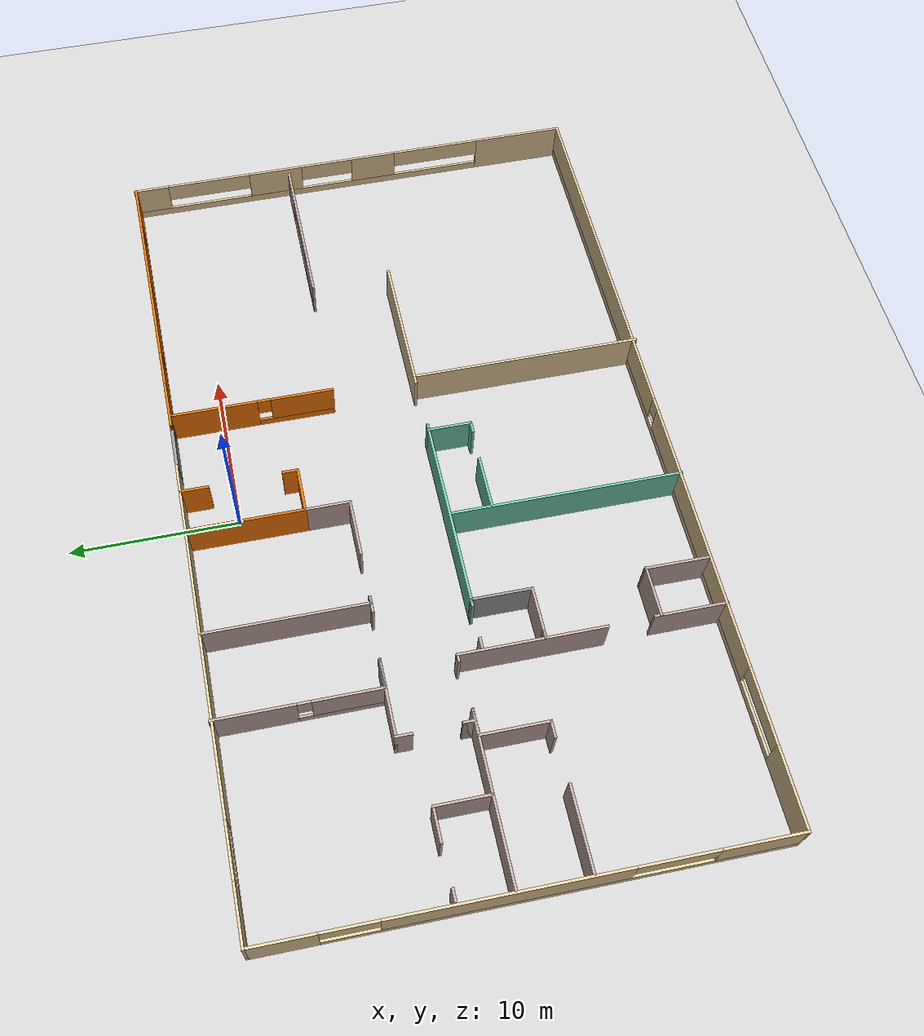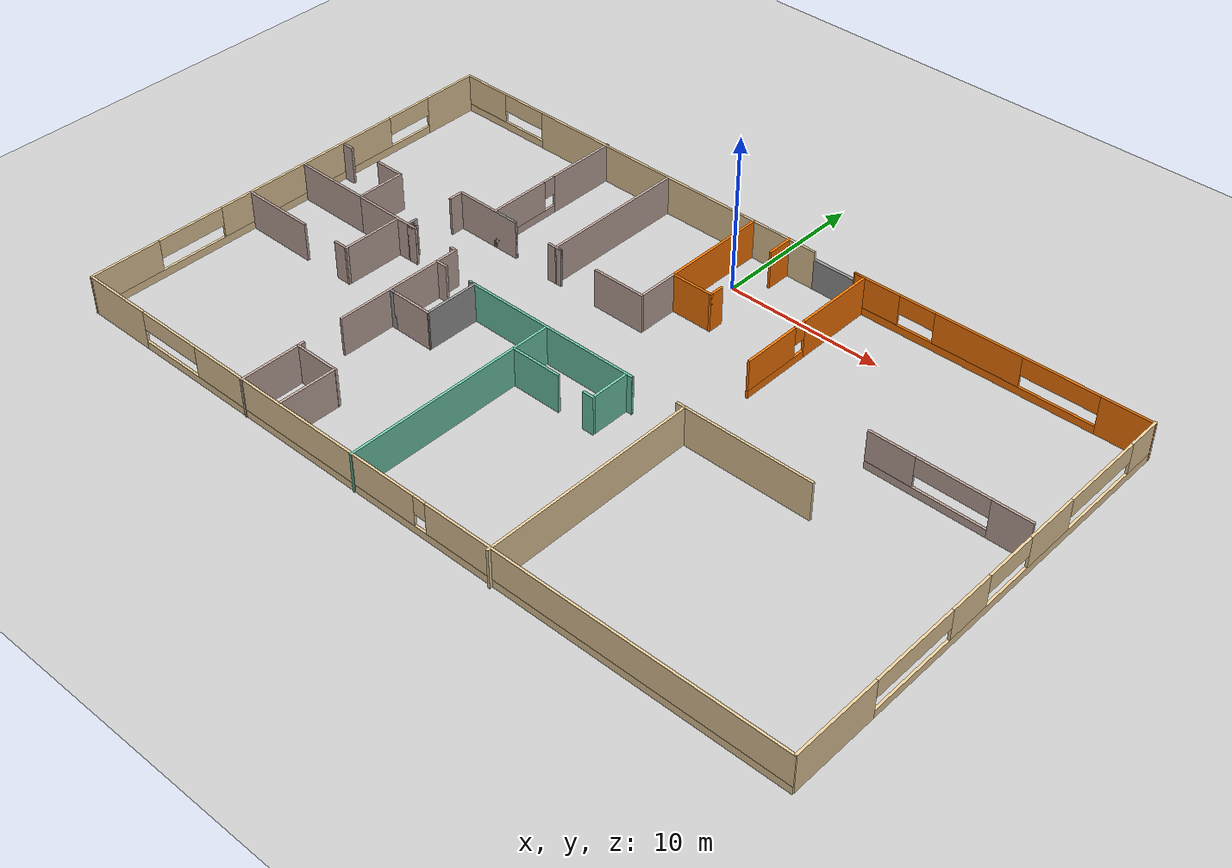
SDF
<sdf version="1.6">
 <world name="default">
  <model name="ground_plane">
   <static>1</static>
   <link name="link">
    <collision name="collision">
     <geometry><plane><normal>0 0 1</normal><size>100 100</size></plane></geometry>
     <surface><friction><ode><mu>100</mu><mu2>50</mu2></ode></friction></surface>
    </collision>
    <visual name="visual">
     <cast_shadows>0</cast_shadows>
     <geometry><plane><normal>0 0 1</normal><size>100 100</size></plane></geometry>
     <material>
      <script><uri>file://media/materials/scripts/gazebo.material</uri><name>Gazebo/Grey</name></script>
     </material>
    </visual>
   </link>
  </model>
  <model name="home">
   <pose>0.17633 -11.1583 0 0 -0 0</pose>
   <link name="Door_0">
    <collision name="Door_0_Collision">
     <geometry><box><size>2.70552 0.2 2</size></box></geometry>
     <pose>0 0 1 0 -0 0</pose>
    </collision>
    <visual name="Door_0_Visual">
     <pose>0 0 1 0 -0 0</pose>
     <geometry><box><size>2.70552 0.2 2</size></box></geometry>
     <material>
      <script><uri>file://media/materials/scripts/gazebo.material</uri><name>Gazebo/Grey</name></script>
     </material>
    </visual>
    <pose>4.41762 14.2282 0 0 -0 0</pose>
   </link>
   <link name="Wall_0">
    <pose>-10.694 14.2147 0 0 -0 3.14159</pose>
    <visual name="Wall_0_Visual_0">
     <pose>-3.22208 0 1.25 0 -0 0</pose>
     <geometry><box><size>21.0558 0.15 2.5</size></box></geometry>
     <material>
      <script><uri>file://media/materials/scripts/gazebo.material</uri><name>Gazebo/Grey</name></script>
      <ambient>0.921569 0.807843 0.615686 1</ambient>
     </material>
     <meta><layer>0</layer></meta>
    </visual>
    <collision name="Wall_0_Collision_0">
     <geometry><box><size>21.0558 0.15 2.5</size></box></geometry>
     <pose>-3.22208 0 1.25 0 -0 0</pose>
    </collision>
    <visual name="Wall_0_Visual_1">
     <pose>10.5279 0 0.25 0 -0 0</pose>
     <geometry><box><size>6.44415 0.15 0.5</size></box></geometry>
     <material>
      <script><uri>file://media/materials/scripts/gazebo.material</uri><name>Gazebo/Grey</name></script>
      <ambient>0.921569 0.807843 0.615686 1</ambient>
     </material>
     <meta><layer>0</layer></meta>
    </visual>
    <collision name="Wall_0_Collision_1">
     <geometry><box><size>6.44415 0.15 0.5</size></box></geometry>
     <pose>10.5279 0 0.25 0 -0 0</pose>
    </collision>
    <visual name="Wall_0_Visual_2">
     <pose>12.0924 0 1.5 0 -0 0</pose>
     <geometry><box><size>3.31523 0.15 2</size></box></geometry>
     <material>
      <script><uri>file://media/materials/scripts/gazebo.material</uri><name>Gazebo/Grey</name></script>
      <ambient>0.921569 0.807843 0.615686 1</ambient>
     </material>
     <meta><layer>0</layer></meta>
    </visual>
    <collision name="Wall_0_Collision_2">
     <geometry><box><size>3.31523 0.15 2</size></box></geometry>
     <pose>12.0924 0 1.5 0 -0 0</pose>
    </collision>
    <visual name="Wall_0_Visual_3">
     <pose>8.87031 0 1.9 0 -0 0</pose>
     <geometry><box><size>3.12892 0.15 1.2</size></box></geometry>
     <material>
      <script><uri>file://media/materials/scripts/gazebo.material</uri><name>Gazebo/Grey</name></script>
      <ambient>0.921569 0.807843 0.615686 1</ambient>
     </material>
     <meta><layer>0</layer></meta>
    </visual>
    <collision name="Wall_0_Collision_3">
     <geometry><box><size>3.12892 0.15 1.2</size></box></geometry>
     <pose>8.87031 0 1.9 0 -0 0</pose>
    </collision>
   </link>
   <link name="Wall_1">
    <pose>-24.369 -0.085334 0 0 -0 -1.5708</pose>
    <visual name="Wall_1_Visual_0">
     <pose>-12.5081 0 1.25 0 -0 0</pose>
     <geometry><box><size>3.7338 0.15 2.5</size></box></geometry>
     <material>
      <script><uri>file://media/materials/scripts/gazebo.material</uri><name>Gazebo/Grey</name></script>
      <ambient>0.921569 0.807843 0.615686 1</ambient>
     </material>
     <meta><layer>0</layer></meta>
    </visual>
    <collision name="Wall_1_Collision_0">
     <geometry><box><size>3.7338 0.15 2.5</size></box></geometry>
     <pose>-12.5081 0 1.25 0 -0 0</pose>
    </collision>
    <visual name="Wall_1_Visual_1">
     <pose>1.8669 0 0.25 0 -0 0</pose>
     <geometry><box><size>25.0162 0.15 0.5</size></box></geometry>
     <material>
      <script><uri>file://media/materials/scripts/gazebo.material</uri><name>Gazebo/Grey</name></script>
      <ambient>0.921569 0.807843 0.615686 1</ambient>
     </material>
     <meta><layer>0</layer></meta>
    </visual>
    <collision name="Wall_1_Collision_1">
     <geometry><box><size>25.0162 0.15 0.5</size></box></geometry>
     <pose>1.8669 0 0.25 0 -0 0</pose>
    </collision>
    <visual name="Wall_1_Visual_2">
     <pose>-1.07522 0 1.5 0 -0 0</pose>
     <geometry><box><size>12.9346 0.15 2</size></box></geometry>
     <material>
      <script><uri>file://media/materials/scripts/gazebo.material</uri><name>Gazebo/Grey</name></script>
      <ambient>0.921569 0.807843 0.615686 1</ambient>
     </material>
     <meta><layer>0</layer></meta>
    </visual>
    <collision name="Wall_1_Collision_2">
     <geometry><box><size>12.9346 0.15 2</size></box></geometry>
     <pose>-1.07522 0 1.5 0 -0 0</pose>
    </collision>
    <visual name="Wall_1_Visual_3">
     <pose>12.0788 0 1.5 0 -0 0</pose>
     <geometry><box><size>4.59231 0.15 2</size></box></geometry>
     <material>
      <script><uri>file://media/materials/scripts/gazebo.material</uri><name>Gazebo/Grey</name></script>
      <ambient>0.921569 0.807843 0.615686 1</ambient>
     </material>
     <meta><layer>0</layer></meta>
    </visual>
    <collision name="Wall_1_Collision_3">
     <geometry><box><size>4.59231 0.15 2</size></box></geometry>
     <pose>12.0788 0 1.5 0 -0 0</pose>
    </collision>
    <visual name="Wall_1_Visual_4">
     <pose>-9.09186 0 1.9 0 -0 0</pose>
     <geometry><box><size>3.09868 0.15 1.2</size></box></geometry>
     <material>
      <script><uri>file://media/materials/scripts/gazebo.material</uri><name>Gazebo/Grey</name></script>
      <ambient>0.921569 0.807843 0.615686 1</ambient>
     </material>
     <meta><layer>0</layer></meta>
    </visual>
    <collision name="Wall_1_Collision_4">
     <geometry><box><size>3.09868 0.15 1.2</size></box></geometry>
     <pose>-9.09186 0 1.9 0 -0 0</pose>
    </collision>
    <visual name="Wall_1_Visual_5">
     <pose>7.58739 0 1.9 0 -0 0</pose>
     <geometry><box><size>4.39061 0.15 1.2</size></box></geometry>
     <material>
      <script><uri>file://media/materials/scripts/gazebo.material</uri><name>Gazebo/Grey</name></script>
      <ambient>0.921569 0.807843 0.615686 1</ambient>
     </material>
     <meta><layer>0</layer></meta>
    </visual>
    <collision name="Wall_1_Collision_5">
     <geometry><box><size>4.39061 0.15 1.2</size></box></geometry>
     <pose>7.58739 0 1.9 0 -0 0</pose>
    </collision>
   </link>
   <link name="Wall_10">
    <collision name="Wall_10_Collision">
     <geometry><box><size>1 0.15 2.5</size></box></geometry>
     <pose>0 0 1.25 0 -0 0</pose>
    </collision>
    <visual name="Wall_10_Visual">
     <pose>0 0 1.25 0 -0 0</pose>
     <geometry><box><size>1 0.15 2.5</size></box></geometry>
     <material>
      <script><uri>file://media/materials/scripts/gazebo.material</uri><name>Gazebo/Grey</name></script>
      <ambient>0.996078 0.47451 0.0196078 1</ambient>
     </material>
     <meta><layer>0</layer></meta>
    </visual>
    <pose>1.32894 7.78967 0 0 -0 1.5708</pose>
   </link>
   <link name="Wall_12">
    <collision name="Wall_12_Collision">
     <geometry><box><size>1.75 0.15 2.5</size></box></geometry>
     <pose>0 0 1.25 0 -0 0</pose>
    </collision>
    <visual name="Wall_12_Visual">
     <pose>0 0 1.25 0 -0 0</pose>
     <geometry><box><size>1.75 0.15 2.5</size></box></geometry>
     <material>
      <script><uri>file://media/materials/scripts/gazebo.material</uri><name>Gazebo/Grey</name></script>
      <ambient>0.996078 0.47451 0.0196078 1</ambient>
     </material>
     <meta><layer>0</layer></meta>
    </visual>
    <pose>1.22772 13.4147 0 0 -0 -1.5708</pose>
   </link>
   <link name="Wall_14">
    <collision name="Wall_14_Collision">
     <geometry><box><size>2.75 0.15 2.5</size></box></geometry>
     <pose>0 0 1.25 0 -0 0</pose>
    </collision>
    <visual name="Wall_14_Visual">
     <pose>0 0 1.25 0 -0 0</pose>
     <geometry><box><size>2.75 0.15 2.5</size></box></geometry>
     <material>
      <script><uri>file://media/materials/scripts/gazebo.material</uri><name>Gazebo/Grey</name></script>
      <ambient>0.760784 0.662745 0.627451 1</ambient>
     </material>
     <meta><layer>0</layer></meta>
    </visual>
    <pose>-1.33164 6.06467 0 0 -0 -1.5708</pose>
   </link>
   <link name="Wall_15">
    <collision name="Wall_15_Collision">
     <geometry><box><size>3.5 0.15 2.5</size></box></geometry>
     <pose>0 0 1.25 0 -0 0</pose>
    </collision>
    <visual name="Wall_15_Visual">
     <pose>0 0 1.25 0 -0 0</pose>
     <geometry><box><size>3.5 0.15 2.5</size></box></geometry>
     <material>
      <script><uri>file://media/materials/scripts/gazebo.material</uri><name>Gazebo/Grey</name></script>
      <ambient>0.760784 0.662745 0.627451 1</ambient>
     </material>
     <meta><layer>0</layer></meta>
    </visual>
    <pose>-3.00664 4.76467 0 0 -0 3.14159</pose>
   </link>
   <link name="Wall_17">
    <collision name="Wall_17_Collision">
     <geometry><box><size>9.59059 0.15 2.5</size></box></geometry>
     <pose>0 0 1.25 0 -0 0</pose>
    </collision>
    <visual name="Wall_17_Visual">
     <pose>0 0 1.25 0 -0 0</pose>
     <geometry><box><size>9.59059 0.15 2.5</size></box></geometry>
     <material>
      <script><uri>file://media/materials/scripts/gazebo.material</uri><name>Gazebo/Grey</name></script>
      <ambient>0.760784 0.662745 0.627451 1</ambient>
     </material>
     <meta><layer>0</layer></meta>
    </visual>
    <pose>-7.76588 9.49437 0 0 -0 -1.57206</pose>
   </link>
   <link name="Wall_18">
    <collision name="Wall_18_Collision">
     <geometry><box><size>0.5 0.15 2.5</size></box></geometry>
     <pose>0 0 1.25 0 -0 0</pose>
    </collision>
    <visual name="Wall_18_Visual">
     <pose>0 0 1.25 0 -0 0</pose>
     <geometry><box><size>0.5 0.15 2.5</size></box></geometry>
     <material>
      <script><uri>file://media/materials/scripts/gazebo.material</uri><name>Gazebo/Grey</name></script>
      <ambient>1 1 1 1</ambient>
     </material>
     <meta><layer>0</layer></meta>
    </visual>
    <pose>-7.59685 4.77408 0 0 -0 0</pose>
   </link>
   <link name="Wall_19">
    <collision name="Wall_19_Collision">
     <geometry><box><size>1 0.15 2.5</size></box></geometry>
     <pose>0 0 1.25 0 -0 0</pose>
    </collision>
    <visual name="Wall_19_Visual">
     <pose>0 0 1.25 0 -0 0</pose>
     <geometry><box><size>1 0.15 2.5</size></box></geometry>
     <material>
      <script><uri>file://media/materials/scripts/gazebo.material</uri><name>Gazebo/Grey</name></script>
      <ambient>0.760784 0.662745 0.627451 1</ambient>
     </material>
     <meta><layer>0</layer></meta>
    </visual>
    <pose>-7.84685 4.77408 0 0 -0 3.14159</pose>
   </link>
   <link name="Wall_2">
    <pose>1e-06 -14.2933 0 0 -0 0.003775</pose>
    <visual name="Wall_2_Visual_0">
     <pose>-22.1181 0 1.25 0 -0 0</pose>
     <geometry><box><size>4.65263 0.15 2.5</size></box></geometry>
     <material>
      <script><uri>file://media/materials/scripts/gazebo.material</uri><name>Gazebo/Grey</name></script>
      <ambient>0.921569 0.807843 0.615686 1</ambient>
     </material>
     <meta><layer>0</layer></meta>
    </visual>
    <collision name="Wall_2_Collision_0">
     <geometry><box><size>4.65263 0.15 2.5</size></box></geometry>
     <pose>-22.1181 0 1.25 0 -0 0</pose>
    </collision>
    <visual name="Wall_2_Visual_1">
     <pose>2.32631 0 0.25 0 -0 0</pose>
     <geometry><box><size>44.2362 0.15 0.5</size></box></geometry>
     <material>
      <script><uri>file://media/materials/scripts/gazebo.material</uri><name>Gazebo/Grey</name></script>
      <ambient>0.921569 0.807843 0.615686 1</ambient>
     </material>
     <meta><layer>0</layer></meta>
    </visual>
    <collision name="Wall_2_Collision_1">
     <geometry><box><size>44.2362 0.15 0.5</size></box></geometry>
     <pose>2.32631 0 0.25 0 -0 0</pose>
    </collision>
    <visual name="Wall_2_Visual_2">
     <pose>-7.11966 0 1.5 0 -0 0</pose>
     <geometry><box><size>16.6115 0.15 2</size></box></geometry>
     <material>
      <script><uri>file://media/materials/scripts/gazebo.material</uri><name>Gazebo/Grey</name></script>
      <ambient>0.921569 0.807843 0.615686 1</ambient>
     </material>
     <meta><layer>0</layer></meta>
    </visual>
    <collision name="Wall_2_Collision_2">
     <geometry><box><size>16.6115 0.15 2</size></box></geometry>
     <pose>-7.11966 0 1.5 0 -0 0</pose>
    </collision>
    <visual name="Wall_2_Visual_3">
     <pose>13.2152 0 1.5 0 -0 0</pose>
     <geometry><box><size>22.4583 0.15 2</size></box></geometry>
     <material>
      <script><uri>file://media/materials/scripts/gazebo.material</uri><name>Gazebo/Grey</name></script>
      <ambient>0.921569 0.807843 0.615686 1</ambient>
     </material>
     <meta><layer>0</layer></meta>
    </visual>
    <collision name="Wall_2_Collision_3">
     <geometry><box><size>22.4583 0.15 2</size></box></geometry>
     <pose>13.2152 0 1.5 0 -0 0</pose>
    </collision>
    <visual name="Wall_2_Visual_4">
     <pose>-17.6086 0 1.9 0 -0 0</pose>
     <geometry><box><size>4.36633 0.15 1.2</size></box></geometry>
     <material>
      <script><uri>file://media/materials/scripts/gazebo.material</uri><name>Gazebo/Grey</name></script>
      <ambient>0.921569 0.807843 0.615686 1</ambient>
     </material>
     <meta><layer>0</layer></meta>
    </visual>
    <collision name="Wall_2_Collision_4">
     <geometry><box><size>4.36633 0.15 1.2</size></box></geometry>
     <pose>-17.6086 0 1.9 0 -0 0</pose>
    </collision>
    <visual name="Wall_2_Visual_5">
     <pose>1.58611 0 1.9 0 -0 0</pose>
     <geometry><box><size>0.8 0.15 1.2</size></box></geometry>
     <material>
      <script><uri>file://media/materials/scripts/gazebo.material</uri><name>Gazebo/Grey</name></script>
      <ambient>0.921569 0.807843 0.615686 1</ambient>
     </material>
     <meta><layer>0</layer></meta>
    </visual>
    <collision name="Wall_2_Collision_5">
     <geometry><box><size>0.8 0.15 1.2</size></box></geometry>
     <pose>1.58611 0 1.9 0 -0 0</pose>
    </collision>
   </link>
   <link name="Wall_21">
    <pose>-12.7235 9.62104 0 0 -0 -1.5708</pose>
    <visual name="Wall_21_Visual_0">
     <pose>-2.41962 0 1.25 0 -0 0</pose>
     <geometry><box><size>4.66076 0.15 2.5</size></box></geometry>
     <material>
      <script><uri>file://media/materials/scripts/gazebo.material</uri><name>Gazebo/Grey</name></script>
      <ambient>0.760784 0.662745 0.627451 1</ambient>
     </material>
     <meta><layer>0</layer></meta>
    </visual>
    <collision name="Wall_21_Collision_0">
     <geometry><box><size>4.66076 0.15 2.5</size></box></geometry>
     <pose>-2.41962 0 1.25 0 -0 0</pose>
    </collision>
    <visual name="Wall_21_Visual_1">
     <pose>2.33038 0 0.25 0 -0 0</pose>
     <geometry><box><size>4.83924 0.15 0.5</size></box></geometry>
     <material>
      <script><uri>file://media/materials/scripts/gazebo.material</uri><name>Gazebo/Grey</name></script>
      <ambient>0.760784 0.662745 0.627451 1</ambient>
     </material>
     <meta><layer>0</layer></meta>
    </visual>
    <collision name="Wall_21_Collision_1">
     <geometry><box><size>4.83924 0.15 0.5</size></box></geometry>
     <pose>2.33038 0 0.25 0 -0 0</pose>
    </collision>
    <visual name="Wall_21_Visual_2">
     <pose>2.73038 0 1.5 0 -0 0</pose>
     <geometry><box><size>4.03923 0.15 2</size></box></geometry>
     <material>
      <script><uri>file://media/materials/scripts/gazebo.material</uri><name>Gazebo/Grey</name></script>
      <ambient>0.760784 0.662745 0.627451 1</ambient>
     </material>
     <meta><layer>0</layer></meta>
    </visual>
    <collision name="Wall_21_Collision_2">
     <geometry><box><size>4.03923 0.15 2</size></box></geometry>
     <pose>2.73038 0 1.5 0 -0 0</pose>
    </collision>
    <visual name="Wall_21_Visual_3">
     <pose>0.310765 0 1.9 0 -0 0</pose>
     <geometry><box><size>0.8 0.15 1.2</size></box></geometry>
     <material>
      <script><uri>file://media/materials/scripts/gazebo.material</uri><name>Gazebo/Grey</name></script>
      <ambient>0.760784 0.662745 0.627451 1</ambient>
     </material>
     <meta><layer>0</layer></meta>
    </visual>
    <collision name="Wall_21_Collision_3">
     <geometry><box><size>0.8 0.15 1.2</size></box></geometry>
     <pose>0.310765 0 1.9 0 -0 0</pose>
    </collision>
   </link>
   <link name="Wall_22">
    <collision name="Wall_22_Collision">
     <geometry><box><size>1.75 0.15 2.5</size></box></geometry>
     <pose>0 0 1.25 0 -0 0</pose>
    </collision>
    <visual name="Wall_22_Visual">
     <pose>0 0 1.25 0 -0 0</pose>
     <geometry><box><size>1.75 0.15 2.5</size></box></geometry>
     <material>
      <script><uri>file://media/materials/scripts/gazebo.material</uri><name>Gazebo/Grey</name></script>
      <ambient>1 1 1 1</ambient>
     </material>
     <meta><layer>0</layer></meta>
    </visual>
    <pose>-11.9235 4.94604 0 0 -0 0</pose>
   </link>
   <link name="Wall_23">
    <collision name="Wall_23_Collision">
     <geometry><box><size>4.5 0.15 2.5</size></box></geometry>
     <pose>0 0 1.25 0 -0 0</pose>
    </collision>
    <visual name="Wall_23_Visual">
     <pose>0 0 1.25 0 -0 0</pose>
     <geometry><box><size>4.5 0.15 2.5</size></box></geometry>
     <material>
      <script><uri>file://media/materials/scripts/gazebo.material</uri><name>Gazebo/Grey</name></script>
      <ambient>0.760784 0.662745 0.627451 1</ambient>
     </material>
     <meta><layer>0</layer></meta>
    </visual>
    <pose>-13.2985 4.94604 0 0 -0 3.14159</pose>
   </link>
   <link name="Wall_24">
    <collision name="Wall_24_Collision">
     <geometry><box><size>1 0.15 2.5</size></box></geometry>
     <pose>0 0 1.25 0 -0 0</pose>
    </collision>
    <visual name="Wall_24_Visual">
     <pose>0 0 1.25 0 -0 0</pose>
     <geometry><box><size>1 0.15 2.5</size></box></geometry>
     <material>
      <script><uri>file://media/materials/scripts/gazebo.material</uri><name>Gazebo/Grey</name></script>
      <ambient>0.760784 0.662745 0.627451 1</ambient>
     </material>
     <meta><layer>0</layer></meta>
    </visual>
    <pose>-15.4735 4.52104 0 0 -0 -1.5708</pose>
   </link>
   <link name="Wall_26">
    <collision name="Wall_26_Collision">
     <geometry><box><size>0.75 0.15 2.5</size></box></geometry>
     <pose>0 0 1.25 0 -0 0</pose>
    </collision>
    <visual name="Wall_26_Visual">
     <pose>0 0 1.25 0 -0 0</pose>
     <geometry><box><size>0.75 0.15 2.5</size></box></geometry>
     <material>
      <script><uri>file://media/materials/scripts/gazebo.material</uri><name>Gazebo/Grey</name></script>
      <ambient>0.760784 0.662745 0.627451 1</ambient>
     </material>
     <meta><layer>0</layer></meta>
    </visual>
    <pose>-23.8968 3.71786 0 0 -0 0</pose>
   </link>
   <link name="Wall_28">
    <collision name="Wall_28_Collision">
     <geometry><box><size>2 0.15 2.5</size></box></geometry>
     <pose>0 0 1.25 0 -0 0</pose>
    </collision>
    <visual name="Wall_28_Visual">
     <pose>0 0 1.25 0 -0 0</pose>
     <geometry><box><size>2 0.15 2.5</size></box></geometry>
     <material>
      <script><uri>file://media/materials/scripts/gazebo.material</uri><name>Gazebo/Grey</name></script>
      <ambient>0.760784 0.662745 0.627451 1</ambient>
     </material>
     <meta><layer>0</layer></meta>
    </visual>
    <pose>-20.3424 3.79923 0 0 -0 0</pose>
   </link>
   <link name="Wall_29">
    <collision name="Wall_29_Collision">
     <geometry><box><size>3.25 0.15 2.5</size></box></geometry>
     <pose>0 0 1.25 0 -0 0</pose>
    </collision>
    <visual name="Wall_29_Visual">
     <pose>0 0 1.25 0 -0 0</pose>
     <geometry><box><size>3.25 0.15 2.5</size></box></geometry>
     <material>
      <script><uri>file://media/materials/scripts/gazebo.material</uri><name>Gazebo/Grey</name></script>
      <ambient>0.760784 0.662745 0.627451 1</ambient>
     </material>
     <meta><layer>0</layer></meta>
    </visual>
    <pose>-19.4174 2.24923 0 0 -0 -1.5708</pose>
   </link>
   <link name="Wall_3">
    <pose>24.346 0.144666 0 0 -0 1.57241</pose>
    <visual name="Wall_3_Visual_0">
     <pose>-11.5446 0 1.25 0 -0 0</pose>
     <geometry><box><size>5.66079 0.15 2.5</size></box></geometry>
     <material>
      <script><uri>file://media/materials/scripts/gazebo.material</uri><name>Gazebo/Grey</name></script>
      <ambient>0.921569 0.807843 0.615686 1</ambient>
     </material>
     <meta><layer>0</layer></meta>
    </visual>
    <collision name="Wall_3_Collision_0">
     <geometry><box><size>5.66079 0.15 2.5</size></box></geometry>
     <pose>-11.5446 0 1.25 0 -0 0</pose>
    </collision>
    <visual name="Wall_3_Visual_1">
     <pose>2.83039 0 0.25 0 -0 0</pose>
     <geometry><box><size>23.0893 0.15 0.5</size></box></geometry>
     <material>
      <script><uri>file://media/materials/scripts/gazebo.material</uri><name>Gazebo/Grey</name></script>
      <ambient>0.921569 0.807843 0.615686 1</ambient>
     </material>
     <meta><layer>0</layer></meta>
    </visual>
    <collision name="Wall_3_Collision_1">
     <geometry><box><size>23.0893 0.15 0.5</size></box></geometry>
     <pose>2.83039 0 0.25 0 -0 0</pose>
    </collision>
    <visual name="Wall_3_Visual_2">
     <pose>-1.59439 0 1.5 0 -0 0</pose>
     <geometry><box><size>2.9093 0.15 2</size></box></geometry>
     <material>
      <script><uri>file://media/materials/scripts/gazebo.material</uri><name>Gazebo/Grey</name></script>
      <ambient>0.921569 0.807843 0.615686 1</ambient>
     </material>
     <meta><layer>0</layer></meta>
    </visual>
    <collision name="Wall_3_Collision_2">
     <geometry><box><size>2.9093 0.15 2</size></box></geometry>
     <pose>-1.59439 0 1.5 0 -0 0</pose>
    </collision>
    <visual name="Wall_3_Visual_3">
     <pose>4.99086 0 1.5 0 -0 0</pose>
     <geometry><box><size>3.50863 0.15 2</size></box></geometry>
     <material>
      <script><uri>file://media/materials/scripts/gazebo.material</uri><name>Gazebo/Grey</name></script>
      <ambient>0.921569 0.807843 0.615686 1</ambient>
     </material>
     <meta><layer>0</layer></meta>
    </visual>
    <collision name="Wall_3_Collision_3">
     <geometry><box><size>3.50863 0.15 2</size></box></geometry>
     <pose>4.99086 0 1.5 0 -0 0</pose>
    </collision>
    <visual name="Wall_3_Visual_4">
     <pose>13.2554 0 1.5 0 -0 0</pose>
     <geometry><box><size>2.23916 0.15 2</size></box></geometry>
     <material>
      <script><uri>file://media/materials/scripts/gazebo.material</uri><name>Gazebo/Grey</name></script>
      <ambient>0.921569 0.807843 0.615686 1</ambient>
     </material>
     <meta><layer>0</layer></meta>
    </visual>
    <collision name="Wall_3_Collision_4">
     <geometry><box><size>2.23916 0.15 2</size></box></geometry>
     <pose>13.2554 0 1.5 0 -0 0</pose>
    </collision>
    <visual name="Wall_3_Visual_5">
     <pose>-5.88164 0 1.9 0 -0 0</pose>
     <geometry><box><size>5.66519 0.15 1.2</size></box></geometry>
     <material>
      <script><uri>file://media/materials/scripts/gazebo.material</uri><name>Gazebo/Grey</name></script>
      <ambient>0.921569 0.807843 0.615686 1</ambient>
     </material>
     <meta><layer>0</layer></meta>
    </visual>
    <collision name="Wall_3_Collision_5">
     <geometry><box><size>5.66519 0.15 1.2</size></box></geometry>
     <pose>-5.88164 0 1.9 0 -0 0</pose>
    </collision>
    <visual name="Wall_3_Visual_6">
     <pose>1.5484 0 1.9 0 -0 0</pose>
     <geometry><box><size>3.37629 0.15 1.2</size></box></geometry>
     <material>
      <script><uri>file://media/materials/scripts/gazebo.material</uri><name>Gazebo/Grey</name></script>
      <ambient>0.921569 0.807843 0.615686 1</ambient>
     </material>
     <meta><layer>0</layer></meta>
    </visual>
    <collision name="Wall_3_Collision_6">
     <geometry><box><size>3.37629 0.15 1.2</size></box></geometry>
     <pose>1.5484 0 1.9 0 -0 0</pose>
    </collision>
    <visual name="Wall_3_Visual_7">
     <pose>9.44052 0 1.9 0 -0 0</pose>
     <geometry><box><size>5.39068 0.15 1.2</size></box></geometry>
     <material>
      <script><uri>file://media/materials/scripts/gazebo.material</uri><name>Gazebo/Grey</name></script>
      <ambient>0.921569 0.807843 0.615686 1</ambient>
     </material>
     <meta><layer>0</layer></meta>
    </visual>
    <collision name="Wall_3_Collision_7">
     <geometry><box><size>5.39068 0.15 1.2</size></box></geometry>
     <pose>9.44052 0 1.9 0 -0 0</pose>
    </collision>
   </link>
   <link name="Wall_30">
    <collision name="Wall_30_Collision">
     <geometry><box><size>4.75 0.15 2.5</size></box></geometry>
     <pose>0 0 1.25 0 -0 0</pose>
    </collision>
    <visual name="Wall_30_Visual">
     <pose>0 0 1.25 0 -0 0</pose>
     <geometry><box><size>4.75 0.15 2.5</size></box></geometry>
     <material>
      <script><uri>file://media/materials/scripts/gazebo.material</uri><name>Gazebo/Grey</name></script>
      <ambient>0.760784 0.662745 0.627451 1</ambient>
     </material>
     <meta><layer>0</layer></meta>
    </visual>
    <pose>-17.1174 0.699227 0 0 -0 0</pose>
   </link>
   <link name="Wall_31">
    <collision name="Wall_31_Collision">
     <geometry><box><size>0.75 0.15 2.5</size></box></geometry>
     <pose>0 0 1.25 0 -0 0</pose>
    </collision>
    <visual name="Wall_31_Visual">
     <pose>0 0 1.25 0 -0 0</pose>
     <geometry><box><size>0.75 0.15 2.5</size></box></geometry>
     <material>
      <script><uri>file://media/materials/scripts/gazebo.material</uri><name>Gazebo/Grey</name></script>
      <ambient>1 1 1 1</ambient>
     </material>
     <meta><layer>0</layer></meta>
    </visual>
    <pose>-15.1174 0.699227 0 0 -0 3.14159</pose>
   </link>
   <link name="Wall_32">
    <collision name="Wall_32_Collision">
     <geometry><box><size>0.75 0.15 2.5</size></box></geometry>
     <pose>0 0 1.25 0 -0 0</pose>
    </collision>
    <visual name="Wall_32_Visual">
     <pose>0 0 1.25 0 -0 0</pose>
     <geometry><box><size>0.75 0.15 2.5</size></box></geometry>
     <material>
      <script><uri>file://media/materials/scripts/gazebo.material</uri><name>Gazebo/Grey</name></script>
      <ambient>1 1 1 1</ambient>
     </material>
     <meta><layer>0</layer></meta>
    </visual>
    <pose>-15.4174 0.999227 0 0 -0 1.5708</pose>
   </link>
   <link name="Wall_33">
    <collision name="Wall_33_Collision">
     <geometry><box><size>0.75 0.15 2.5</size></box></geometry>
     <pose>0 0 1.25 0 -0 0</pose>
    </collision>
    <visual name="Wall_33_Visual">
     <pose>0 0 1.25 0 -0 0</pose>
     <geometry><box><size>0.75 0.15 2.5</size></box></geometry>
     <material>
      <script><uri>file://media/materials/scripts/gazebo.material</uri><name>Gazebo/Grey</name></script>
      <ambient>0.760784 0.662745 0.627451 1</ambient>
     </material>
     <meta><layer>0</layer></meta>
    </visual>
    <pose>-15.4174 0.999227 0 0 -0 -1.5708</pose>
   </link>
   <link name="Wall_34">
    <collision name="Wall_34_Collision">
     <geometry><box><size>0.971585 0.15 2.5</size></box></geometry>
     <pose>0 0 1.25 0 -0 0</pose>
    </collision>
    <visual name="Wall_34_Visual">
     <pose>0 0 1.25 0 -0 0</pose>
     <geometry><box><size>0.971585 0.15 2.5</size></box></geometry>
     <material>
      <script><uri>file://media/materials/scripts/gazebo.material</uri><name>Gazebo/Grey</name></script>
      <ambient>0.760784 0.662745 0.627451 1</ambient>
     </material>
     <meta><layer>0</layer></meta>
    </visual>
    <pose>-15.828 0.684225 0 0 -0 -3.10507</pose>
   </link>
   <link name="Wall_35">
    <collision name="Wall_35_Collision">
     <geometry><box><size>4 0.15 2.5</size></box></geometry>
     <pose>0 0 1.25 0 -0 0</pose>
    </collision>
    <visual name="Wall_35_Visual">
     <pose>0 0 1.25 0 -0 0</pose>
     <geometry><box><size>4 0.15 2.5</size></box></geometry>
     <material>
      <script><uri>file://media/materials/scripts/gazebo.material</uri><name>Gazebo/Grey</name></script>
      <ambient>0.760784 0.662745 0.627451 1</ambient>
     </material>
     <meta><layer>0</layer></meta>
    </visual>
    <pose>-16.2385 -1.25578 0 0 -0 -1.5708</pose>
   </link>
   <link name="Wall_36">
    <collision name="Wall_36_Collision">
     <geometry><box><size>1 0.15 2.5</size></box></geometry>
     <pose>0 0 1.25 0 -0 0</pose>
    </collision>
    <visual name="Wall_36_Visual">
     <pose>0 0 1.25 0 -0 0</pose>
     <geometry><box><size>1 0.15 2.5</size></box></geometry>
     <material>
      <script><uri>file://media/materials/scripts/gazebo.material</uri><name>Gazebo/Grey</name></script>
      <ambient>0.760784 0.662745 0.627451 1</ambient>
     </material>
     <meta><layer>0</layer></meta>
    </visual>
    <pose>-16.6635 -3.18078 0 0 -0 3.14159</pose>
   </link>
   <link name="Wall_38">
    <collision name="Wall_38_Collision">
     <geometry><box><size>5 0.15 2.5</size></box></geometry>
     <pose>0 0 1.25 0 -0 0</pose>
    </collision>
    <visual name="Wall_38_Visual">
     <pose>0 0 1.25 0 -0 0</pose>
     <geometry><box><size>5 0.15 2.5</size></box></geometry>
     <material>
      <script><uri>file://media/materials/scripts/gazebo.material</uri><name>Gazebo/Grey</name></script>
      <ambient>0.760784 0.662745 0.627451 1</ambient>
     </material>
     <meta><layer>0</layer></meta>
    </visual>
    <pose>-21.8424 0.699227 0 0 -0 3.14159</pose>
   </link>
   <link name="Wall_4">
    <pose>15.0905 14.3067 0 0 -0 -3.13163</pose>
    <visual name="Wall_4_Visual_0">
     <pose>-7.73933 0 1.25 0 -0 0</pose>
     <geometry><box><size>3.13726 0.15 2.5</size></box></geometry>
     <material>
      <script><uri>file://media/materials/scripts/gazebo.material</uri><name>Gazebo/Grey</name></script>
      <ambient>0.996078 0.47451 0.0196078 1</ambient>
     </material>
     <meta><layer>0</layer></meta>
    </visual>
    <collision name="Wall_4_Collision_0">
     <geometry><box><size>3.13726 0.15 2.5</size></box></geometry>
     <pose>-7.73933 0 1.25 0 -0 0</pose>
    </collision>
    <visual name="Wall_4_Visual_1">
     <pose>1.56863 0 0.25 0 -0 0</pose>
     <geometry><box><size>15.4787 0.15 0.5</size></box></geometry>
     <material>
      <script><uri>file://media/materials/scripts/gazebo.material</uri><name>Gazebo/Grey</name></script>
      <ambient>0.996078 0.47451 0.0196078 1</ambient>
     </material>
     <meta><layer>0</layer></meta>
    </visual>
    <collision name="Wall_4_Collision_1">
     <geometry><box><size>15.4787 0.15 0.5</size></box></geometry>
     <pose>1.56863 0 0.25 0 -0 0</pose>
    </collision>
    <visual name="Wall_4_Visual_2">
     <pose>1.21008 0 1.5 0 -0 0</pose>
     <geometry><box><size>5.4772 0.15 2</size></box></geometry>
     <material>
      <script><uri>file://media/materials/scripts/gazebo.material</uri><name>Gazebo/Grey</name></script>
      <ambient>0.996078 0.47451 0.0196078 1</ambient>
     </material>
     <meta><layer>0</layer></meta>
    </visual>
    <collision name="Wall_4_Collision_2">
     <geometry><box><size>5.4772 0.15 2</size></box></geometry>
     <pose>1.21008 0 1.5 0 -0 0</pose>
    </collision>
    <visual name="Wall_4_Visual_3">
     <pose>7.77632 0 1.5 0 -0 0</pose>
     <geometry><box><size>3.06327 0.15 2</size></box></geometry>
     <material>
      <script><uri>file://media/materials/scripts/gazebo.material</uri><name>Gazebo/Grey</name></script>
      <ambient>0.996078 0.47451 0.0196078 1</ambient>
     </material>
     <meta><layer>0</layer></meta>
    </visual>
    <collision name="Wall_4_Collision_3">
     <geometry><box><size>3.06327 0.15 2</size></box></geometry>
     <pose>7.77632 0 1.5 0 -0 0</pose>
    </collision>
    <visual name="Wall_4_Visual_4">
     <pose>-3.84961 0 1.9 0 -0 0</pose>
     <geometry><box><size>4.64218 0.15 1.2</size></box></geometry>
     <material>
      <script><uri>file://media/materials/scripts/gazebo.material</uri><name>Gazebo/Grey</name></script>
      <ambient>0.996078 0.47451 0.0196078 1</ambient>
     </material>
     <meta><layer>0</layer></meta>
    </visual>
    <collision name="Wall_4_Collision_4">
     <geometry><box><size>4.64218 0.15 1.2</size></box></geometry>
     <pose>-3.84961 0 1.9 0 -0 0</pose>
    </collision>
    <visual name="Wall_4_Visual_5">
     <pose>5.09669 0 1.9 0 -0 0</pose>
     <geometry><box><size>2.29601 0.15 1.2</size></box></geometry>
     <material>
      <script><uri>file://media/materials/scripts/gazebo.material</uri><name>Gazebo/Grey</name></script>
      <ambient>0.996078 0.47451 0.0196078 1</ambient>
     </material>
     <meta><layer>0</layer></meta>
    </visual>
    <collision name="Wall_4_Collision_5">
     <geometry><box><size>2.29601 0.15 1.2</size></box></geometry>
     <pose>5.09669 0 1.9 0 -0 0</pose>
    </collision>
   </link>
   <link name="Wall_40">
    <collision name="Wall_40_Collision">
     <geometry><box><size>4.75 0.15 2.5</size></box></geometry>
     <pose>0 0 1.25 0 -0 0</pose>
    </collision>
    <visual name="Wall_40_Visual">
     <pose>0 0 1.25 0 -0 0</pose>
     <geometry><box><size>4.75 0.15 2.5</size></box></geometry>
     <material>
      <script><uri>file://media/materials/scripts/gazebo.material</uri><name>Gazebo/Grey</name></script>
      <ambient>0.760784 0.662745 0.627451 1</ambient>
     </material>
     <meta><layer>0</layer></meta>
    </visual>
    <pose>-21.9782 -3.28002 0 0 -0 0</pose>
   </link>
   <link name="Wall_42">
    <collision name="Wall_42_Collision">
     <geometry><box><size>0.5 0.15 2.5</size></box></geometry>
     <pose>0 0 1.25 0 -0 0</pose>
    </collision>
    <visual name="Wall_42_Visual">
     <pose>0 0 1.25 0 -0 0</pose>
     <geometry><box><size>0.5 0.15 2.5</size></box></geometry>
     <material>
      <script><uri>file://media/materials/scripts/gazebo.material</uri><name>Gazebo/Grey</name></script>
      <ambient>0.760784 0.662745 0.627451 1</ambient>
     </material>
     <meta><layer>0</layer></meta>
    </visual>
    <pose>-11.8281 0.79773 0 0 -0 0</pose>
   </link>
   <link name="Wall_43">
    <collision name="Wall_43_Collision">
     <geometry><box><size>8.5 0.15 2.5</size></box></geometry>
     <pose>0 0 1.25 0 -0 0</pose>
    </collision>
    <visual name="Wall_43_Visual">
     <pose>0 0 1.25 0 -0 0</pose>
     <geometry><box><size>8.5 0.15 2.5</size></box></geometry>
     <material>
      <script><uri>file://media/materials/scripts/gazebo.material</uri><name>Gazebo/Grey</name></script>
      <ambient>0.760784 0.662745 0.627451 1</ambient>
     </material>
     <meta><layer>0</layer></meta>
    </visual>
    <pose>-11.6531 -3.37727 0 0 -0 -1.5708</pose>
   </link>
   <link name="Wall_45">
    <collision name="Wall_45_Collision">
     <geometry><box><size>4.25 0.15 2.5</size></box></geometry>
     <pose>0 0 1.25 0 -0 0</pose>
    </collision>
    <visual name="Wall_45_Visual">
     <pose>0 0 1.25 0 -0 0</pose>
     <geometry><box><size>4.25 0.15 2.5</size></box></geometry>
     <material>
      <script><uri>file://media/materials/scripts/gazebo.material</uri><name>Gazebo/Grey</name></script>
      <ambient>0.760784 0.662745 0.627451 1</ambient>
     </material>
     <meta><layer>0</layer></meta>
    </visual>
    <pose>-11.5843 -12.3279 0 0 -0 -1.5708</pose>
   </link>
   <link name="Wall_47">
    <collision name="Wall_47_Collision">
     <geometry><box><size>3 0.15 2.5</size></box></geometry>
     <pose>0 0 1.25 0 -0 0</pose>
    </collision>
    <visual name="Wall_47_Visual">
     <pose>0 0 1.25 0 -0 0</pose>
     <geometry><box><size>3 0.15 2.5</size></box></geometry>
     <material>
      <script><uri>file://media/materials/scripts/gazebo.material</uri><name>Gazebo/Grey</name></script>
      <ambient>0.760784 0.662745 0.627451 1</ambient>
     </material>
     <meta><layer>0</layer></meta>
    </visual>
    <pose>-10.1067 -10.6034 0 0 -0 0</pose>
   </link>
   <link name="Wall_48">
    <collision name="Wall_48_Collision">
     <geometry><box><size>3.75087 0.15 2.5</size></box></geometry>
     <pose>0 0 1.25 0 -0 0</pose>
    </collision>
    <visual name="Wall_48_Visual">
     <pose>0 0 1.25 0 -0 0</pose>
     <geometry><box><size>3.75087 0.15 2.5</size></box></geometry>
     <material>
      <script><uri>file://media/materials/scripts/gazebo.material</uri><name>Gazebo/Grey</name></script>
      <ambient>0.760784 0.662745 0.627451 1</ambient>
     </material>
     <meta><layer>0</layer></meta>
    </visual>
    <pose>-8.72119 -12.4034 0 0 -0 -1.5781</pose>
   </link>
   <link name="Wall_5">
    <collision name="Wall_5_Collision">
     <geometry><box><size>0.75 0.15 2.5</size></box></geometry>
     <pose>0 0 1.25 0 -0 0</pose>
    </collision>
    <visual name="Wall_5_Visual">
     <pose>0 0 1.25 0 -0 0</pose>
     <geometry><box><size>0.75 0.15 2.5</size></box></geometry>
     <material>
      <script><uri>file://media/materials/scripts/gazebo.material</uri><name>Gazebo/Grey</name></script>
      <ambient>0.996078 0.47451 0.0196078 1</ambient>
     </material>
     <meta><layer>0</layer></meta>
    </visual>
    <pose>6.158 14.2147 0 0 -0 0</pose>
   </link>
   <link name="Wall_50">
    <collision name="Wall_50_Collision">
     <geometry><box><size>2.75 0.15 2.5</size></box></geometry>
     <pose>0 0 1.25 0 -0 0</pose>
    </collision>
    <visual name="Wall_50_Visual">
     <pose>0 0 1.25 0 -0 0</pose>
     <geometry><box><size>2.75 0.15 2.5</size></box></geometry>
     <material>
      <script><uri>file://media/materials/scripts/gazebo.material</uri><name>Gazebo/Grey</name></script>
      <ambient>0.760784 0.662745 0.627451 1</ambient>
     </material>
     <meta><layer>0</layer></meta>
    </visual>
    <pose>-9.95886 -4.09372 0 0 -0 0</pose>
   </link>
   <link name="Wall_51">
    <collision name="Wall_51_Collision">
     <geometry><box><size>3.59061 0.15 2.5</size></box></geometry>
     <pose>0 0 1.25 0 -0 0</pose>
    </collision>
    <visual name="Wall_51_Visual">
     <pose>0 0 1.25 0 -0 0</pose>
     <geometry><box><size>3.59061 0.15 2.5</size></box></geometry>
     <material>
      <script><uri>file://media/materials/scripts/gazebo.material</uri><name>Gazebo/Grey</name></script>
      <ambient>1 1 1 1</ambient>
     </material>
     <meta><layer>0</layer></meta>
    </visual>
    <pose>-8.65289 -2.37343 0 0 -0 1.56733</pose>
   </link>
   <link name="Wall_52">
    <collision name="Wall_52_Collision">
     <geometry><box><size>0.5 0.15 2.5</size></box></geometry>
     <pose>0 0 1.25 0 -0 0</pose>
    </collision>
    <visual name="Wall_52_Visual">
     <pose>0 0 1.25 0 -0 0</pose>
     <geometry><box><size>0.5 0.15 2.5</size></box></geometry>
     <material>
      <script><uri>file://media/materials/scripts/gazebo.material</uri><name>Gazebo/Grey</name></script>
      <ambient>1 1 1 1</ambient>
     </material>
     <meta><layer>0</layer></meta>
    </visual>
    <pose>-8.82193 -0.653136 0 0 -0 3.14159</pose>
   </link>
   <link name="Wall_53">
    <collision name="Wall_53_Collision">
     <geometry><box><size>12 0.15 2.5</size></box></geometry>
     <pose>0 0 1.25 0 -0 0</pose>
    </collision>
    <visual name="Wall_53_Visual">
     <pose>0 0 1.25 0 -0 0</pose>
     <geometry><box><size>12 0.15 2.5</size></box></geometry>
     <material>
      <script><uri>file://media/materials/scripts/gazebo.material</uri><name>Gazebo/Grey</name></script>
      <ambient>0.435294 0.796078 0.67451 1</ambient>
     </material>
     <meta><layer>0</layer></meta>
    </visual>
    <pose>-3.07193 -0.653136 0 0 -0 0</pose>
   </link>
   <link name="Wall_54">
    <collision name="Wall_54_Collision">
     <geometry><box><size>0.5 0.15 2.5</size></box></geometry>
     <pose>0 0 1.25 0 -0 0</pose>
    </collision>
    <visual name="Wall_54_Visual">
     <pose>0 0 1.25 0 -0 0</pose>
     <geometry><box><size>0.5 0.15 2.5</size></box></geometry>
     <material>
      <script><uri>file://media/materials/scripts/gazebo.material</uri><name>Gazebo/Grey</name></script>
      <ambient>0.435294 0.796078 0.67451 1</ambient>
     </material>
     <meta><layer>0</layer></meta>
    </visual>
    <pose>2.67807 -0.653136 0 0 -0 3.14159</pose>
   </link>
   <link name="Wall_55">
    <collision name="Wall_55_Collision">
     <geometry><box><size>2.68117 0.15 2.5</size></box></geometry>
     <pose>0 0 1.25 0 -0 0</pose>
    </collision>
    <visual name="Wall_55_Visual">
     <pose>0 0 1.25 0 -0 0</pose>
     <geometry><box><size>2.68117 0.15 2.5</size></box></geometry>
     <material>
      <script><uri>file://media/materials/scripts/gazebo.material</uri><name>Gazebo/Grey</name></script>
      <ambient>0.435294 0.796078 0.67451 1</ambient>
     </material>
     <meta><layer>0</layer></meta>
    </visual>
    <pose>2.50307 -1.91872 0 0 -0 -1.5708</pose>
   </link>
   <link name="Wall_56">
    <collision name="Wall_56_Collision">
     <geometry><box><size>0.75 0.15 2.5</size></box></geometry>
     <pose>0 0 1.25 0 -0 0</pose>
    </collision>
    <visual name="Wall_56_Visual">
     <pose>0 0 1.25 0 -0 0</pose>
     <geometry><box><size>0.75 0.15 2.5</size></box></geometry>
     <material>
      <script><uri>file://media/materials/scripts/gazebo.material</uri><name>Gazebo/Grey</name></script>
      <ambient>0.435294 0.796078 0.67451 1</ambient>
     </material>
     <meta><layer>0</layer></meta>
    </visual>
    <pose>2.20307 -3.18431 0 0 -0 3.14159</pose>
   </link>
   <link name="Wall_58">
    <collision name="Wall_58_Collision">
     <geometry><box><size>13.75 0.15 2.5</size></box></geometry>
     <pose>0 0 1.25 0 -0 0</pose>
    </collision>
    <visual name="Wall_58_Visual">
     <pose>0 0 1.25 0 -0 0</pose>
     <geometry><box><size>13.75 0.15 2.5</size></box></geometry>
     <material>
      <script><uri>file://media/materials/scripts/gazebo.material</uri><name>Gazebo/Grey</name></script>
      <ambient>0.435294 0.796078 0.67451 1</ambient>
     </material>
     <meta><layer>0</layer></meta>
    </visual>
    <pose>-3.20317 -7.55753 0 0 -0 -1.5708</pose>
   </link>
   <link name="Wall_6">
    <pose>6.44606 9.32717 0 0 -0 -1.57324</pose>
    <visual name="Wall_6_Visual_0">
     <pose>-2.30764 0 1.25 0 -0 0</pose>
     <geometry><box><size>5.30974 0.15 2.5</size></box></geometry>
     <material>
      <script><uri>file://media/materials/scripts/gazebo.material</uri><name>Gazebo/Grey</name></script>
      <ambient>0.996078 0.47451 0.0196078 1</ambient>
     </material>
     <meta><layer>0</layer></meta>
    </visual>
    <collision name="Wall_6_Collision_0">
     <geometry><box><size>5.30974 0.15 2.5</size></box></geometry>
     <pose>-2.30764 0 1.25 0 -0 0</pose>
    </collision>
    <visual name="Wall_6_Visual_1">
     <pose>2.65487 0 0.25 0 -0 0</pose>
     <geometry><box><size>4.61529 0.15 0.5</size></box></geometry>
     <material>
      <script><uri>file://media/materials/scripts/gazebo.material</uri><name>Gazebo/Grey</name></script>
      <ambient>0.996078 0.47451 0.0196078 1</ambient>
     </material>
     <meta><layer>0</layer></meta>
    </visual>
    <collision name="Wall_6_Collision_1">
     <geometry><box><size>4.61529 0.15 0.5</size></box></geometry>
     <pose>2.65487 0 0.25 0 -0 0</pose>
    </collision>
    <visual name="Wall_6_Visual_2">
     <pose>3.05487 0 1.5 0 -0 0</pose>
     <geometry><box><size>3.81529 0.15 2</size></box></geometry>
     <material>
      <script><uri>file://media/materials/scripts/gazebo.material</uri><name>Gazebo/Grey</name></script>
      <ambient>0.996078 0.47451 0.0196078 1</ambient>
     </material>
     <meta><layer>0</layer></meta>
    </visual>
    <collision name="Wall_6_Collision_2">
     <geometry><box><size>3.81529 0.15 2</size></box></geometry>
     <pose>3.05487 0 1.5 0 -0 0</pose>
    </collision>
    <visual name="Wall_6_Visual_3">
     <pose>0.747224 0 1.9 0 -0 0</pose>
     <geometry><box><size>0.8 0.15 1.2</size></box></geometry>
     <material>
      <script><uri>file://media/materials/scripts/gazebo.material</uri><name>Gazebo/Grey</name></script>
      <ambient>0.996078 0.47451 0.0196078 1</ambient>
     </material>
     <meta><layer>0</layer></meta>
    </visual>
    <collision name="Wall_6_Collision_3">
     <geometry><box><size>0.8 0.15 1.2</size></box></geometry>
     <pose>0.747224 0 1.9 0 -0 0</pose>
    </collision>
   </link>
   <link name="Wall_61">
    <collision name="Wall_61_Collision">
     <geometry><box><size>3.25 0.15 2.5</size></box></geometry>
     <pose>0 0 1.25 0 -0 0</pose>
    </collision>
    <visual name="Wall_61_Visual">
     <pose>0 0 1.25 0 -0 0</pose>
     <geometry><box><size>3.25 0.15 2.5</size></box></geometry>
     <material>
      <script><uri>file://media/materials/scripts/gazebo.material</uri><name>Gazebo/Grey</name></script>
      <ambient>0.435294 0.796078 0.67451 1</ambient>
     </material>
     <meta><layer>0</layer></meta>
    </visual>
    <pose>-1.5718 -3.11728 0 0 -0 0</pose>
   </link>
   <link name="Wall_63">
    <collision name="Wall_63_Collision">
     <geometry><box><size>8.75 0.15 2.5</size></box></geometry>
     <pose>0 0 1.25 0 -0 0</pose>
    </collision>
    <visual name="Wall_63_Visual">
     <pose>0 0 1.25 0 -0 0</pose>
     <geometry><box><size>8.75 0.15 2.5</size></box></geometry>
     <material>
      <script><uri>file://media/materials/scripts/gazebo.material</uri><name>Gazebo/Grey</name></script>
      <ambient>0.921569 0.807843 0.615686 1</ambient>
     </material>
     <meta><layer>0</layer></meta>
    </visual>
    <pose>10.2356 -0.594787 0 0 -0 3.14159</pose>
   </link>
   <link name="Wall_65">
    <collision name="Wall_65_Collision">
     <geometry><box><size>14 0.15 2.5</size></box></geometry>
     <pose>0 0 1.25 0 -0 0</pose>
    </collision>
    <visual name="Wall_65_Visual">
     <pose>0 0 1.25 0 -0 0</pose>
     <geometry><box><size>14 0.15 2.5</size></box></geometry>
     <material>
      <script><uri>file://media/materials/scripts/gazebo.material</uri><name>Gazebo/Grey</name></script>
      <ambient>0.921569 0.807843 0.615686 1</ambient>
     </material>
     <meta><layer>0</layer></meta>
    </visual>
    <pose>6.39857 -7.51979 0 0 -0 -1.5708</pose>
   </link>
   <link name="Wall_67">
    <collision name="Wall_67_Collision">
     <geometry><box><size>0.75 0.15 2.5</size></box></geometry>
     <pose>0 0 1.25 0 -0 0</pose>
    </collision>
    <visual name="Wall_67_Visual">
     <pose>0 0 1.25 0 -0 0</pose>
     <geometry><box><size>0.75 0.15 2.5</size></box></geometry>
     <material>
      <script><uri>file://media/materials/scripts/gazebo.material</uri><name>Gazebo/Grey</name></script>
      <ambient>0.760784 0.662745 0.627451 1</ambient>
     </material>
     <meta><layer>0</layer></meta>
    </visual>
    <pose>-11.2843 -0.594787 0 0 -0 0</pose>
   </link>
   <link name="Wall_69">
    <collision name="Wall_69_Collision">
     <geometry><box><size>0.5 0.15 2.5</size></box></geometry>
     <pose>0 0 1.25 0 -0 0</pose>
    </collision>
    <visual name="Wall_69_Visual">
     <pose>0 0 1.25 0 -0 0</pose>
     <geometry><box><size>0.5 0.15 2.5</size></box></geometry>
     <material>
      <script><uri>file://media/materials/scripts/gazebo.material</uri><name>Gazebo/Grey</name></script>
      <ambient>1 1 1 1</ambient>
     </material>
     <meta><layer>0</layer></meta>
    </visual>
    <pose>-11.4339 -4.09372 0 0 -0 3.14159</pose>
   </link>
   <link name="Wall_71">
    <pose>19.07 4.27447 0 0 -0 3.14159</pose>
    <visual name="Wall_71_Visual_0">
     <pose>-3.67406 0 1.25 0 -0 0</pose>
     <geometry><box><size>2.40189 0.15 2.5</size></box></geometry>
     <material>
      <script><uri>file://media/materials/scripts/gazebo.material</uri><name>Gazebo/Grey</name></script>
      <ambient>0.760784 0.662745 0.627451 1</ambient>
     </material>
     <meta><layer>0</layer></meta>
    </visual>
    <collision name="Wall_71_Collision_0">
     <geometry><box><size>2.40189 0.15 2.5</size></box></geometry>
     <pose>-3.67406 0 1.25 0 -0 0</pose>
    </collision>
    <visual name="Wall_71_Visual_1">
     <pose>1.20094 0 0.25 0 -0 0</pose>
     <geometry><box><size>7.34811 0.15 0.5</size></box></geometry>
     <material>
      <script><uri>file://media/materials/scripts/gazebo.material</uri><name>Gazebo/Grey</name></script>
      <ambient>0.760784 0.662745 0.627451 1</ambient>
     </material>
     <meta><layer>0</layer></meta>
    </visual>
    <collision name="Wall_71_Collision_1">
     <geometry><box><size>7.34811 0.15 0.5</size></box></geometry>
     <pose>1.20094 0 0.25 0 -0 0</pose>
    </collision>
    <visual name="Wall_71_Visual_2">
     <pose>3.41912 0 1.5 0 -0 0</pose>
     <geometry><box><size>2.91176 0.15 2</size></box></geometry>
     <material>
      <script><uri>file://media/materials/scripts/gazebo.material</uri><name>Gazebo/Grey</name></script>
      <ambient>0.760784 0.662745 0.627451 1</ambient>
     </material>
     <meta><layer>0</layer></meta>
    </visual>
    <collision name="Wall_71_Collision_2">
     <geometry><box><size>2.91176 0.15 2</size></box></geometry>
     <pose>3.41912 0 1.5 0 -0 0</pose>
    </collision>
    <visual name="Wall_71_Visual_3">
     <pose>-0.254936 0 1.9 0 -0 0</pose>
     <geometry><box><size>4.43635 0.15 1.2</size></box></geometry>
     <material>
      <script><uri>file://media/materials/scripts/gazebo.material</uri><name>Gazebo/Grey</name></script>
      <ambient>0.760784 0.662745 0.627451 1</ambient>
     </material>
     <meta><layer>0</layer></meta>
    </visual>
    <collision name="Wall_71_Collision_3">
     <geometry><box><size>4.43635 0.15 1.2</size></box></geometry>
     <pose>-0.254936 0 1.9 0 -0 0</pose>
    </collision>
   </link>
   <link name="Wall_8">
    <collision name="Wall_8_Collision">
     <geometry><box><size>7 0.15 2.5</size></box></geometry>
     <pose>0 0 1.25 0 -0 0</pose>
    </collision>
    <visual name="Wall_8_Visual">
     <pose>0 0 1.25 0 -0 0</pose>
     <geometry><box><size>7 0.15 2.5</size></box></geometry>
     <material>
      <script><uri>file://media/materials/scripts/gazebo.material</uri><name>Gazebo/Grey</name></script>
      <ambient>0.996078 0.47451 0.0196078 1</ambient>
     </material>
     <meta><layer>0</layer></meta>
    </visual>
    <pose>-1.33164 10.7897 0 0 -0 -1.5708</pose>
   </link>
   <link name="Wall_9">
    <collision name="Wall_9_Collision">
     <geometry><box><size>2.81058 0.15 2.5</size></box></geometry>
     <pose>0 0 1.25 0 -0 0</pose>
    </collision>
    <visual name="Wall_9_Visual">
     <pose>0 0 1.25 0 -0 0</pose>
     <geometry><box><size>2.81058 0.15 2.5</size></box></geometry>
     <material>
      <script><uri>file://media/materials/scripts/gazebo.material</uri><name>Gazebo/Grey</name></script>
      <ambient>0.996078 0.47451 0.0196078 1</ambient>
     </material>
     <meta><layer>0</layer></meta>
    </visual>
    <pose>-0.00135 7.36467 0 0 -0 0</pose>
   </link>
   <static>1</static>
  </model>
 </world>
</sdf>
